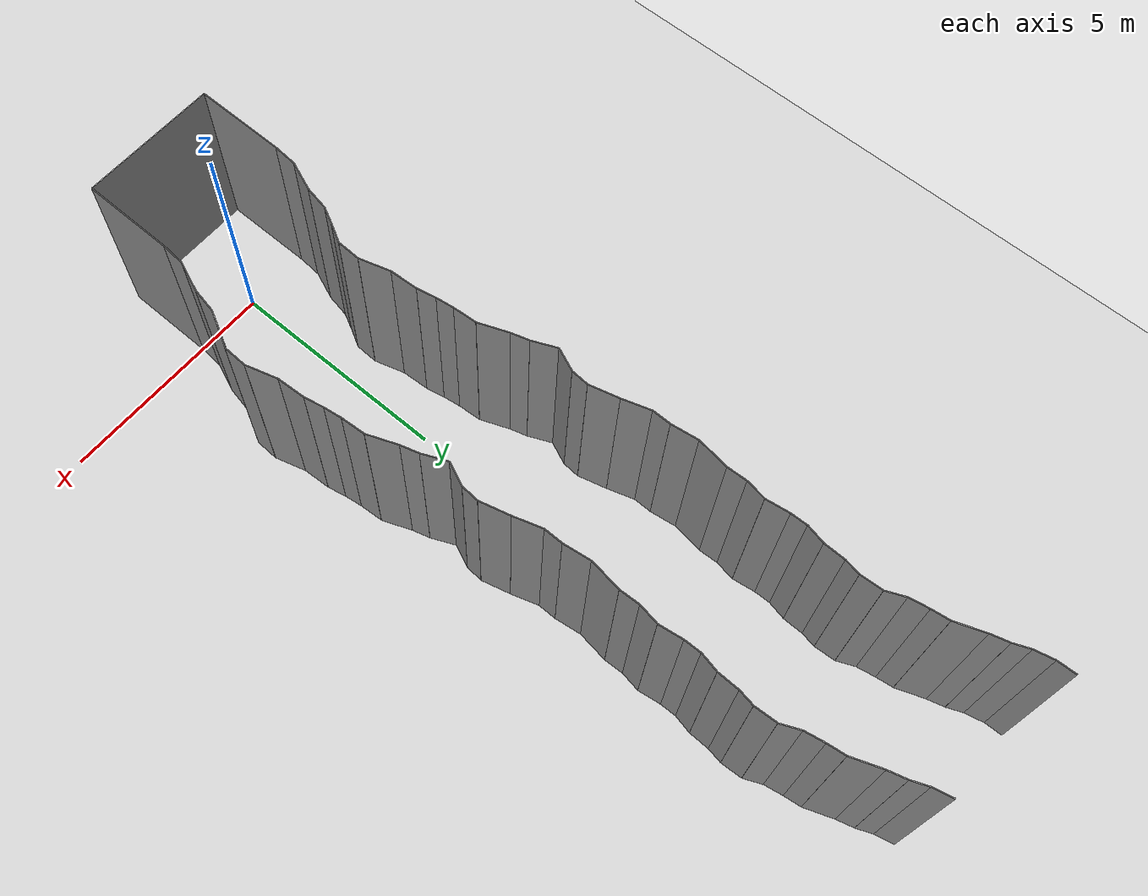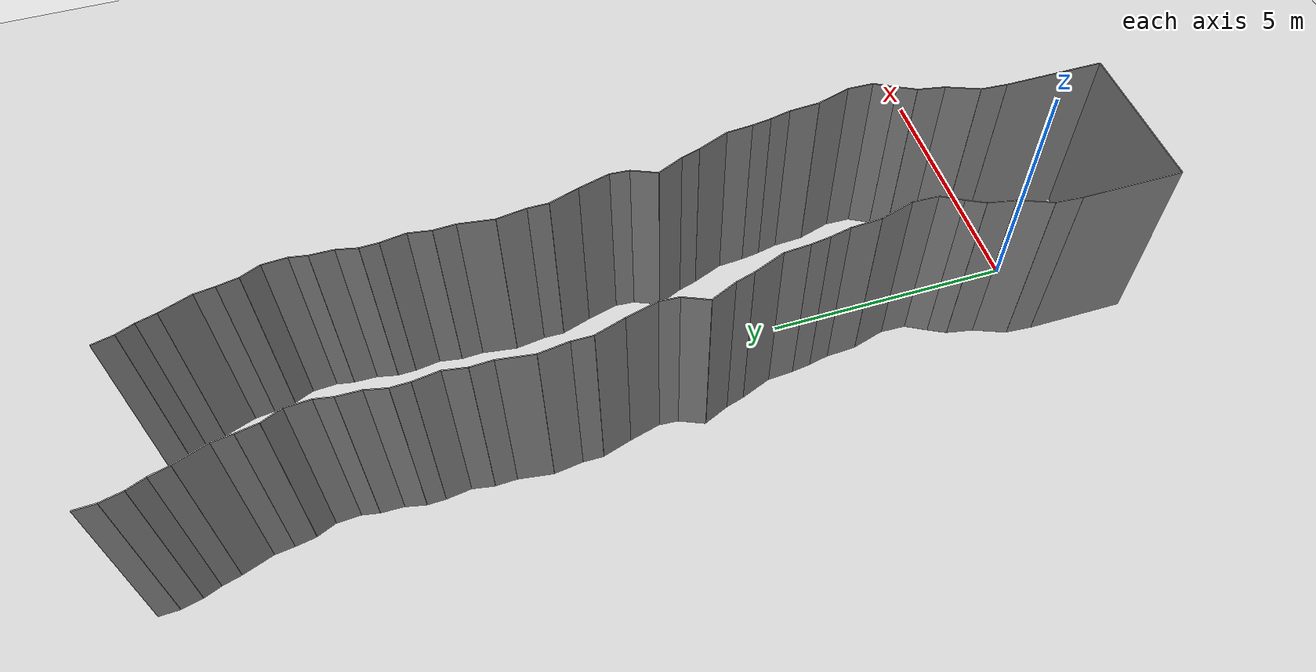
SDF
<sdf version="1.6">
 <world name="default">
  <model name="ground_plane">
   <static>1</static>
   <link name="link">
    <collision name="collision">
     <geometry><plane><normal>0 0 1</normal><size>200 200</size></plane></geometry>
     <surface><friction><ode><mu>100</mu><mu2>50</mu2></ode></friction></surface>
    </collision>
    <visual name="visual">
     <cast_shadows>0</cast_shadows>
     <geometry><plane><normal>0 0 1</normal><size>200 200</size></plane></geometry>
     <material>
      <script><uri>file://media/materials/scripts/gazebo.material</uri><name>Gazebo/Grey</name></script>
     </material>
    </visual>
   </link>
   <pose>0 100 0 0 -0 0</pose>
  </model>
  <model name="wall_back">
   <static>1</static>
   <pose>0.0 -2 2 0.0 0 0.0</pose>
   <link name="link">
    <collision name="collision"><geometry><box><size>3 0.02 4</size></box></geometry></collision>
    <visual name="visual">
     <material>
      <script><name>Gazebo/Grey</name><uri>file://media/materials/scripts/gazebo.material</uri></script>
     </material>
     <geometry><box><size>3 0.02 4</size></box></geometry>
    </visual>
   </link>
  </model>
  <model name="wall_left">
   <static>1</static>
   <pose>1.5 -1 2 0 0 0.00</pose>
   <link name="link">
    <collision name="collision"><geometry><box><size>0.02 2 4</size></box></geometry></collision>
    <visual name="visual">
     <material>
      <script><name>Gazebo/Grey</name><uri>file://media/materials/scripts/gazebo.material</uri></script>
     </material>
     <geometry><box><size>0.02 2 4</size></box></geometry>
    </visual>
   </link>
  </model>
  <model name="wall_right">
   <static>1</static>
   <pose>-1.5 -1 2 0 0 0.00</pose>
   <link name="link">
    <collision name="collision"><geometry><box><size>0.02 2 4</size></box></geometry></collision>
    <visual name="visual">
     <material>
      <script><name>Gazebo/Grey</name><uri>file://media/materials/scripts/gazebo.material</uri></script>
     </material>
     <geometry><box><size>0.02 2 4</size></box></geometry>
    </visual>
   </link>
  </model>
  <model name="wall_0">
   <static>1</static>
   <pose>-1.4806505816911582 0.2638760078779775 2 0 0 -0.07319668671021085</pose>
   <link name="link">
    <collision name="collision"><geometry><box><size>0.02 0.52916896176 4</size></box></geometry></collision>
    <visual name="visual">
     <material>
      <script><name>Gazebo/Grey</name><uri>file://media/materials/scripts/gazebo.material</uri></script>
     </material>
     <geometry><box><size>0.02 0.52916896176 4</size></box></geometry>
    </visual>
   </link>
  </model>
  <model name="wall_1">
   <static>1</static>
   <pose>1.5193494183088418 0.2638760078779775 2 0 0 -0.07319668671021085</pose>
   <link name="link">
    <collision name="collision"><geometry><box><size>0.02 0.52916896176 4</size></box></geometry></collision>
    <visual name="visual">
     <material>
      <script><name>Gazebo/Grey</name><uri>file://media/materials/scripts/gazebo.material</uri></script>
     </material>
     <geometry><box><size>0.02 0.52916896176 4</size></box></geometry>
    </visual>
   </link>
  </model>
  <model name="wall_2">
   <static>1</static>
   <pose>-1.3347677560443025 0.8451626978386627 2 0 0 -0.3793356239943414</pose>
   <link name="link">
    <collision name="collision"><geometry><box><size>0.02 0.683403963327 4</size></box></geometry></collision>
    <visual name="visual">
     <material>
      <script><name>Gazebo/Grey</name><uri>file://media/materials/scripts/gazebo.material</uri></script>
     </material>
     <geometry><box><size>0.02 0.683403963327 4</size></box></geometry>
    </visual>
   </link>
  </model>
  <model name="wall_3">
   <static>1</static>
   <pose>1.6652322439556975 0.8451626978386627 2 0 0 -0.3793356239943414</pose>
   <link name="link">
    <collision name="collision"><geometry><box><size>0.02 0.683403963327 4</size></box></geometry></collision>
    <visual name="visual">
     <material>
      <script><name>Gazebo/Grey</name><uri>file://media/materials/scripts/gazebo.material</uri></script>
     </material>
     <geometry><box><size>0.02 0.683403963327 4</size></box></geometry>
    </visual>
   </link>
  </model>
  <model name="wall_4">
   <static>1</static>
   <pose>-1.1574966765008337 1.427560702445053 2 0 0 -0.18918234575141468</pose>
   <link name="link">
    <collision name="collision"><geometry><box><size>0.02 0.539602047732 4</size></box></geometry></collision>
    <visual name="visual">
     <material>
      <script><name>Gazebo/Grey</name><uri>file://media/materials/scripts/gazebo.material</uri></script>
     </material>
     <geometry><box><size>0.02 0.539602047732 4</size></box></geometry>
    </visual>
   </link>
  </model>
  <model name="wall_5">
   <static>1</static>
   <pose>1.8425033234991663 1.427560702445053 2 0 0 -0.18918234575141468</pose>
   <link name="link">
    <collision name="collision"><geometry><box><size>0.02 0.539602047732 4</size></box></geometry></collision>
    <visual name="visual">
     <material>
      <script><name>Gazebo/Grey</name><uri>file://media/materials/scripts/gazebo.material</uri></script>
     </material>
     <geometry><box><size>0.02 0.539602047732 4</size></box></geometry>
    </visual>
   </link>
  </model>
  <model name="wall_6">
   <static>1</static>
   <pose>-1.018175248905752 1.8668594782574415 2 0 0 -0.47018002745150633</pose>
   <link name="link">
    <collision name="collision"><geometry><box><size>0.02 0.391057870227 4</size></box></geometry></collision>
    <visual name="visual">
     <material>
      <script><name>Gazebo/Grey</name><uri>file://media/materials/scripts/gazebo.material</uri></script>
     </material>
     <geometry><box><size>0.02 0.391057870227 4</size></box></geometry>
    </visual>
   </link>
  </model>
  <model name="wall_7">
   <static>1</static>
   <pose>1.981824751094248 1.8668594782574415 2 0 0 -0.47018002745150633</pose>
   <link name="link">
    <collision name="collision"><geometry><box><size>0.02 0.391057870227 4</size></box></geometry></collision>
    <visual name="visual">
     <material>
      <script><name>Gazebo/Grey</name><uri>file://media/materials/scripts/gazebo.material</uri></script>
     </material>
     <geometry><box><size>0.02 0.391057870227 4</size></box></geometry>
    </visual>
   </link>
  </model>
  <model name="wall_8">
   <static>1</static>
   <pose>-0.8187151531529959 2.243682264581633 2 0 0 -0.5009270629662687</pose>
   <link name="link">
    <collision name="collision"><geometry><box><size>0.02 0.461754925735 4</size></box></geometry></collision>
    <visual name="visual">
     <material>
      <script><name>Gazebo/Grey</name><uri>file://media/materials/scripts/gazebo.material</uri></script>
     </material>
     <geometry><box><size>0.02 0.461754925735 4</size></box></geometry>
    </visual>
   </link>
  </model>
  <model name="wall_9">
   <static>1</static>
   <pose>2.181284846847004 2.243682264581633 2 0 0 -0.5009270629662687</pose>
   <link name="link">
    <collision name="collision"><geometry><box><size>0.02 0.461754925735 4</size></box></geometry></collision>
    <visual name="visual">
     <material>
      <script><name>Gazebo/Grey</name><uri>file://media/materials/scripts/gazebo.material</uri></script>
     </material>
     <geometry><box><size>0.02 0.461754925735 4</size></box></geometry>
    </visual>
   </link>
  </model>
  <model name="wall_10">
   <static>1</static>
   <pose>-0.699499163627389 2.701210871615846 2 0 0 -0.03269064099146519</pose>
   <link name="link">
    <collision name="collision"><geometry><box><size>0.02 0.510307200756 4</size></box></geometry></collision>
    <visual name="visual">
     <material>
      <script><name>Gazebo/Grey</name><uri>file://media/materials/scripts/gazebo.material</uri></script>
     </material>
     <geometry><box><size>0.02 0.510307200756 4</size></box></geometry>
    </visual>
   </link>
  </model>
  <model name="wall_11">
   <static>1</static>
   <pose>2.300500836372611 2.701210871615846 2 0 0 -0.03269064099146519</pose>
   <link name="link">
    <collision name="collision"><geometry><box><size>0.02 0.510307200756 4</size></box></geometry></collision>
    <visual name="visual">
     <material>
      <script><name>Gazebo/Grey</name><uri>file://media/materials/scripts/gazebo.material</uri></script>
     </material>
     <geometry><box><size>0.02 0.510307200756 4</size></box></geometry>
    </visual>
   </link>
  </model>
  <model name="wall_12">
   <static>1</static>
   <pose>-0.7886705382312041 3.288972228835625 2 0 0 0.28506953916078176</pose>
   <link name="link">
    <collision name="collision"><geometry><box><size>0.02 0.693475377139 4</size></box></geometry></collision>
    <visual name="visual">
     <material>
      <script><name>Gazebo/Grey</name><uri>file://media/materials/scripts/gazebo.material</uri></script>
     </material>
     <geometry><box><size>0.02 0.693475377139 4</size></box></geometry>
    </visual>
   </link>
  </model>
  <model name="wall_13">
   <static>1</static>
   <pose>2.2113294617687957 3.288972228835625 2 0 0 0.28506953916078176</pose>
   <link name="link">
    <collision name="collision"><geometry><box><size>0.02 0.693475377139 4</size></box></geometry></collision>
    <visual name="visual">
     <material>
      <script><name>Gazebo/Grey</name><uri>file://media/materials/scripts/gazebo.material</uri></script>
     </material>
     <geometry><box><size>0.02 0.693475377139 4</size></box></geometry>
    </visual>
   </link>
  </model>
  <model name="wall_14">
   <static>1</static>
   <pose>-0.9032436255926277 3.926684897969823 2 0 0 0.05588869139170713</pose>
   <link name="link">
    <collision name="collision"><geometry><box><size>0.02 0.610890996522 4</size></box></geometry></collision>
    <visual name="visual">
     <material>
      <script><name>Gazebo/Grey</name><uri>file://media/materials/scripts/gazebo.material</uri></script>
     </material>
     <geometry><box><size>0.02 0.610890996522 4</size></box></geometry>
    </visual>
   </link>
  </model>
  <model name="wall_15">
   <static>1</static>
   <pose>2.0967563744073723 3.926684897969823 2 0 0 0.05588869139170713</pose>
   <link name="link">
    <collision name="collision"><geometry><box><size>0.02 0.610890996522 4</size></box></geometry></collision>
    <visual name="visual">
     <material>
      <script><name>Gazebo/Grey</name><uri>file://media/materials/scripts/gazebo.material</uri></script>
     </material>
     <geometry><box><size>0.02 0.610890996522 4</size></box></geometry>
    </visual>
   </link>
  </model>
  <model name="wall_16">
   <static>1</static>
   <pose>-0.9632969751219683 4.437540530153037 2 0 0 0.20585223921532592</pose>
   <link name="link">
    <collision name="collision"><geometry><box><size>0.02 0.420655329162 4</size></box></geometry></collision>
    <visual name="visual">
     <material>
      <script><name>Gazebo/Grey</name><uri>file://media/materials/scripts/gazebo.material</uri></script>
     </material>
     <geometry><box><size>0.02 0.420655329162 4</size></box></geometry>
    </visual>
   </link>
  </model>
  <model name="wall_17">
   <static>1</static>
   <pose>2.036703024878032 4.437540530153037 2 0 0 0.20585223921532592</pose>
   <link name="link">
    <collision name="collision"><geometry><box><size>0.02 0.420655329162 4</size></box></geometry></collision>
    <visual name="visual">
     <material>
      <script><name>Gazebo/Grey</name><uri>file://media/materials/scripts/gazebo.material</uri></script>
     </material>
     <geometry><box><size>0.02 0.420655329162 4</size></box></geometry>
    </visual>
   </link>
  </model>
  <model name="wall_18">
   <static>1</static>
   <pose>-1.0332514346551713 4.836432062273257 2 0 0 0.13880396763324238</pose>
   <link name="link">
    <collision name="collision"><geometry><box><size>0.02 0.389757587681 4</size></box></geometry></collision>
    <visual name="visual">
     <material>
      <script><name>Gazebo/Grey</name><uri>file://media/materials/scripts/gazebo.material</uri></script>
     </material>
     <geometry><box><size>0.02 0.389757587681 4</size></box></geometry>
    </visual>
   </link>
  </model>
  <model name="wall_19">
   <static>1</static>
   <pose>1.9667485653448287 4.836432062273257 2 0 0 0.13880396763324238</pose>
   <link name="link">
    <collision name="collision"><geometry><box><size>0.02 0.389757587681 4</size></box></geometry></collision>
    <visual name="visual">
     <material>
      <script><name>Gazebo/Grey</name><uri>file://media/materials/scripts/gazebo.material</uri></script>
     </material>
     <geometry><box><size>0.02 0.389757587681 4</size></box></geometry>
    </visual>
   </link>
  </model>
  <model name="wall_20">
   <static>1</static>
   <pose>-1.0778982370499175 5.289179252299811 2 0 0 0.0679764345224434</pose>
   <link name="link">
    <collision name="collision"><geometry><box><size>0.02 0.520687941478 4</size></box></geometry></collision>
    <visual name="visual">
     <material>
      <script><name>Gazebo/Grey</name><uri>file://media/materials/scripts/gazebo.material</uri></script>
     </material>
     <geometry><box><size>0.02 0.520687941478 4</size></box></geometry>
    </visual>
   </link>
  </model>
  <model name="wall_21">
   <static>1</static>
   <pose>1.9221017629500825 5.289179252299811 2 0 0 0.0679764345224434</pose>
   <link name="link">
    <collision name="collision"><geometry><box><size>0.02 0.520687941478 4</size></box></geometry></collision>
    <visual name="visual">
     <material>
      <script><name>Gazebo/Grey</name><uri>file://media/materials/scripts/gazebo.material</uri></script>
     </material>
     <geometry><box><size>0.02 0.520687941478 4</size></box></geometry>
    </visual>
   </link>
  </model>
  <model name="wall_22">
   <static>1</static>
   <pose>-1.2184899678075378 5.859696038116188 2 0 0 0.37661257804343046</pose>
   <link name="link">
    <collision name="collision"><geometry><box><size>0.02 0.668391895065 4</size></box></geometry></collision>
    <visual name="visual">
     <material>
      <script><name>Gazebo/Grey</name><uri>file://media/materials/scripts/gazebo.material</uri></script>
     </material>
     <geometry><box><size>0.02 0.668391895065 4</size></box></geometry>
    </visual>
   </link>
  </model>
  <model name="wall_23">
   <static>1</static>
   <pose>1.7815100321924622 5.859696038116188 2 0 0 0.37661257804343046</pose>
   <link name="link">
    <collision name="collision"><geometry><box><size>0.02 0.668391895065 4</size></box></geometry></collision>
    <visual name="visual">
     <material>
      <script><name>Gazebo/Grey</name><uri>file://media/materials/scripts/gazebo.material</uri></script>
     </material>
     <geometry><box><size>0.02 0.668391895065 4</size></box></geometry>
    </visual>
   </link>
  </model>
  <model name="wall_24">
   <static>1</static>
   <pose>-1.3963707065241764 6.357607284663069 2 0 0 0.28571841662320563</pose>
   <link name="link">
    <collision name="collision"><geometry><box><size>0.02 0.390088755445 4</size></box></geometry></collision>
    <visual name="visual">
     <material>
      <script><name>Gazebo/Grey</name><uri>file://media/materials/scripts/gazebo.material</uri></script>
     </material>
     <geometry><box><size>0.02 0.390088755445 4</size></box></geometry>
    </visual>
   </link>
  </model>
  <model name="wall_25">
   <static>1</static>
   <pose>1.6036292934758236 6.357607284663069 2 0 0 0.28571841662320563</pose>
   <link name="link">
    <collision name="collision"><geometry><box><size>0.02 0.390088755445 4</size></box></geometry></collision>
    <visual name="visual">
     <material>
      <script><name>Gazebo/Grey</name><uri>file://media/materials/scripts/gazebo.material</uri></script>
     </material>
     <geometry><box><size>0.02 0.390088755445 4</size></box></geometry>
    </visual>
   </link>
  </model>
  <model name="wall_26">
   <static>1</static>
   <pose>-1.5641696388041426 6.797914586991042 2 0 0 0.41923395385083295</pose>
   <link name="link">
    <collision name="collision"><geometry><box><size>0.02 0.554346070406 4</size></box></geometry></collision>
    <visual name="visual">
     <material>
      <script><name>Gazebo/Grey</name><uri>file://media/materials/scripts/gazebo.material</uri></script>
     </material>
     <geometry><box><size>0.02 0.554346070406 4</size></box></geometry>
    </visual>
   </link>
  </model>
  <model name="wall_27">
   <static>1</static>
   <pose>1.4358303611958574 6.797914586991042 2 0 0 0.41923395385083295</pose>
   <link name="link">
    <collision name="collision"><geometry><box><size>0.02 0.554346070406 4</size></box></geometry></collision>
    <visual name="visual">
     <material>
      <script><name>Gazebo/Grey</name><uri>file://media/materials/scripts/gazebo.material</uri></script>
     </material>
     <geometry><box><size>0.02 0.554346070406 4</size></box></geometry>
    </visual>
   </link>
  </model>
  <model name="wall_28">
   <static>1</static>
   <pose>-1.5715556928346086 7.294797096098278 2 0 0 -0.4083257589642621</pose>
   <link name="link">
    <collision name="collision"><geometry><box><size>0.02 0.531087053653 4</size></box></geometry></collision>
    <visual name="visual">
     <material>
      <script><name>Gazebo/Grey</name><uri>file://media/materials/scripts/gazebo.material</uri></script>
     </material>
     <geometry><box><size>0.02 0.531087053653 4</size></box></geometry>
    </visual>
   </link>
  </model>
  <model name="wall_29">
   <static>1</static>
   <pose>1.4284443071653914 7.294797096098278 2 0 0 -0.4083257589642621</pose>
   <link name="link">
    <collision name="collision"><geometry><box><size>0.02 0.531087053653 4</size></box></geometry></collision>
    <visual name="visual">
     <material>
      <script><name>Gazebo/Grey</name><uri>file://media/materials/scripts/gazebo.material</uri></script>
     </material>
     <geometry><box><size>0.02 0.531087053653 4</size></box></geometry>
    </visual>
   </link>
  </model>
  <model name="wall_30">
   <static>1</static>
   <pose>-1.4531127868125584 7.728849146482762 2 0 0 -0.06820697990331713</pose>
   <link name="link">
    <collision name="collision"><geometry><box><size>0.02 0.38156657386 4</size></box></geometry></collision>
    <visual name="visual">
     <material>
      <script><name>Gazebo/Grey</name><uri>file://media/materials/scripts/gazebo.material</uri></script>
     </material>
     <geometry><box><size>0.02 0.38156657386 4</size></box></geometry>
    </visual>
   </link>
  </model>
  <model name="wall_31">
   <static>1</static>
   <pose>1.5468872131874416 7.728849146482762 2 0 0 -0.06820697990331713</pose>
   <link name="link">
    <collision name="collision"><geometry><box><size>0.02 0.38156657386 4</size></box></geometry></collision>
    <visual name="visual">
     <material>
      <script><name>Gazebo/Grey</name><uri>file://media/materials/scripts/gazebo.material</uri></script>
     </material>
     <geometry><box><size>0.02 0.38156657386 4</size></box></geometry>
    </visual>
   </link>
  </model>
  <model name="wall_32">
   <static>1</static>
   <pose>-1.5222561957525884 8.230989704984943 2 0 0 0.25760327481442136</pose>
   <link name="link">
    <collision name="collision"><geometry><box><size>0.02 0.644880658828 4</size></box></geometry></collision>
    <visual name="visual">
     <material>
      <script><name>Gazebo/Grey</name><uri>file://media/materials/scripts/gazebo.material</uri></script>
     </material>
     <geometry><box><size>0.02 0.644880658828 4</size></box></geometry>
    </visual>
   </link>
  </model>
  <model name="wall_33">
   <static>1</static>
   <pose>1.4777438042474116 8.230989704984943 2 0 0 0.25760327481442136</pose>
   <link name="link">
    <collision name="collision"><geometry><box><size>0.02 0.644880658828 4</size></box></geometry></collision>
    <visual name="visual">
     <material>
      <script><name>Gazebo/Grey</name><uri>file://media/materials/scripts/gazebo.material</uri></script>
     </material>
     <geometry><box><size>0.02 0.644880658828 4</size></box></geometry>
    </visual>
   </link>
  </model>
  <model name="wall_34">
   <static>1</static>
   <pose>-1.6977240495216837 8.836065523477549 2 0 0 0.3080745388373704</pose>
   <link name="link">
    <collision name="collision"><geometry><box><size>0.02 0.615529509744 4</size></box></geometry></collision>
    <visual name="visual">
     <material>
      <script><name>Gazebo/Grey</name><uri>file://media/materials/scripts/gazebo.material</uri></script>
     </material>
     <geometry><box><size>0.02 0.615529509744 4</size></box></geometry>
    </visual>
   </link>
  </model>
  <model name="wall_35">
   <static>1</static>
   <pose>1.3022759504783163 8.836065523477549 2 0 0 0.3080745388373704</pose>
   <link name="link">
    <collision name="collision"><geometry><box><size>0.02 0.615529509744 4</size></box></geometry></collision>
    <visual name="visual">
     <material>
      <script><name>Gazebo/Grey</name><uri>file://media/materials/scripts/gazebo.material</uri></script>
     </material>
     <geometry><box><size>0.02 0.615529509744 4</size></box></geometry>
    </visual>
   </link>
  </model>
  <model name="wall_36">
   <static>1</static>
   <pose>-1.7900697899834113 9.332865241432385 2 0 0 -0.004795643857899882</pose>
   <link name="link">
    <collision name="collision"><geometry><box><size>0.02 0.407054239281 4</size></box></geometry></collision>
    <visual name="visual">
     <material>
      <script><name>Gazebo/Grey</name><uri>file://media/materials/scripts/gazebo.material</uri></script>
     </material>
     <geometry><box><size>0.02 0.407054239281 4</size></box></geometry>
    </visual>
   </link>
  </model>
  <model name="wall_37">
   <static>1</static>
   <pose>1.2099302100165887 9.332865241432385 2 0 0 -0.004795643857899882</pose>
   <link name="link">
    <collision name="collision"><geometry><box><size>0.02 0.407054239281 4</size></box></geometry></collision>
    <visual name="visual">
     <material>
      <script><name>Gazebo/Grey</name><uri>file://media/materials/scripts/gazebo.material</uri></script>
     </material>
     <geometry><box><size>0.02 0.407054239281 4</size></box></geometry>
    </visual>
   </link>
  </model>
  <model name="wall_38">
   <static>1</static>
   <pose>-1.8290855316536374 9.826789955649428 2 0 0 0.1368519854148838</pose>
   <link name="link">
    <collision name="collision"><geometry><box><size>0.02 0.5862813823 4</size></box></geometry></collision>
    <visual name="visual">
     <material>
      <script><name>Gazebo/Grey</name><uri>file://media/materials/scripts/gazebo.material</uri></script>
     </material>
     <geometry><box><size>0.02 0.5862813823 4</size></box></geometry>
    </visual>
   </link>
  </model>
  <model name="wall_39">
   <static>1</static>
   <pose>1.1709144683463626 9.826789955649428 2 0 0 0.1368519854148838</pose>
   <link name="link">
    <collision name="collision"><geometry><box><size>0.02 0.5862813823 4</size></box></geometry></collision>
    <visual name="visual">
     <material>
      <script><name>Gazebo/Grey</name><uri>file://media/materials/scripts/gazebo.material</uri></script>
     </material>
     <geometry><box><size>0.02 0.5862813823 4</size></box></geometry>
    </visual>
   </link>
  </model>
  <model name="wall_40">
   <static>1</static>
   <pose>-1.8211837255270784 10.460243788075154 2 0 0 -0.13871294060656478</pose>
   <link name="link">
    <collision name="collision"><geometry><box><size>0.02 0.692761928253 4</size></box></geometry></collision>
    <visual name="visual">
     <material>
      <script><name>Gazebo/Grey</name><uri>file://media/materials/scripts/gazebo.material</uri></script>
     </material>
     <geometry><box><size>0.02 0.692761928253 4</size></box></geometry>
    </visual>
   </link>
  </model>
  <model name="wall_41">
   <static>1</static>
   <pose>1.1788162744729216 10.460243788075154 2 0 0 -0.13871294060656478</pose>
   <link name="link">
    <collision name="collision"><geometry><box><size>0.02 0.692761928253 4</size></box></geometry></collision>
    <visual name="visual">
     <material>
      <script><name>Gazebo/Grey</name><uri>file://media/materials/scripts/gazebo.material</uri></script>
     </material>
     <geometry><box><size>0.02 0.692761928253 4</size></box></geometry>
    </visual>
   </link>
  </model>
  <model name="wall_42">
   <static>1</static>
   <pose>-1.7820610402955435 11.017080949439686 2 0 0 0.04100408089633034</pose>
   <link name="link">
    <collision name="collision"><geometry><box><size>0.02 0.42792622097 4</size></box></geometry></collision>
    <visual name="visual">
     <material>
      <script><name>Gazebo/Grey</name><uri>file://media/materials/scripts/gazebo.material</uri></script>
     </material>
     <geometry><box><size>0.02 0.42792622097 4</size></box></geometry>
    </visual>
   </link>
  </model>
  <model name="wall_43">
   <static>1</static>
   <pose>1.2179389597044565 11.017080949439686 2 0 0 0.04100408089633034</pose>
   <link name="link">
    <collision name="collision"><geometry><box><size>0.02 0.42792622097 4</size></box></geometry></collision>
    <visual name="visual">
     <material>
      <script><name>Gazebo/Grey</name><uri>file://media/materials/scripts/gazebo.material</uri></script>
     </material>
     <geometry><box><size>0.02 0.42792622097 4</size></box></geometry>
    </visual>
   </link>
  </model>
  <model name="wall_44">
   <static>1</static>
   <pose>-1.7545526363760067 11.448993846082535 2 0 0 -0.16481129784456724</pose>
   <link name="link">
    <collision name="collision"><geometry><box><size>0.02 0.44225207632 4</size></box></geometry></collision>
    <visual name="visual">
     <material>
      <script><name>Gazebo/Grey</name><uri>file://media/materials/scripts/gazebo.material</uri></script>
     </material>
     <geometry><box><size>0.02 0.44225207632 4</size></box></geometry>
    </visual>
   </link>
  </model>
  <model name="wall_45">
   <static>1</static>
   <pose>1.2454473636239933 11.448993846082535 2 0 0 -0.16481129784456724</pose>
   <link name="link">
    <collision name="collision"><geometry><box><size>0.02 0.44225207632 4</size></box></geometry></collision>
    <visual name="visual">
     <material>
      <script><name>Gazebo/Grey</name><uri>file://media/materials/scripts/gazebo.material</uri></script>
     </material>
     <geometry><box><size>0.02 0.44225207632 4</size></box></geometry>
    </visual>
   </link>
  </model>
  <model name="wall_46">
   <static>1</static>
   <pose>-1.7539616690065436 11.916115314415272 2 0 0 0.14236175861577385</pose>
   <link name="link">
    <collision name="collision"><geometry><box><size>0.02 0.503072924029 4</size></box></geometry></collision>
    <visual name="visual">
     <material>
      <script><name>Gazebo/Grey</name><uri>file://media/materials/scripts/gazebo.material</uri></script>
     </material>
     <geometry><box><size>0.02 0.503072924029 4</size></box></geometry>
    </visual>
   </link>
  </model>
  <model name="wall_47">
   <static>1</static>
   <pose>1.2460383309934564 11.916115314415272 2 0 0 0.14236175861577385</pose>
   <link name="link">
    <collision name="collision"><geometry><box><size>0.02 0.503072924029 4</size></box></geometry></collision>
    <visual name="visual">
     <material>
      <script><name>Gazebo/Grey</name><uri>file://media/materials/scripts/gazebo.material</uri></script>
     </material>
     <geometry><box><size>0.02 0.503072924029 4</size></box></geometry>
    </visual>
   </link>
  </model>
  <model name="wall_48">
   <static>1</static>
   <pose>-1.7937694805933937 12.343922469897969 2 0 0 0.0230335079206646</pose>
   <link name="link">
    <collision name="collision"><geometry><box><size>0.02 0.357725529907 4</size></box></geometry></collision>
    <visual name="visual">
     <material>
      <script><name>Gazebo/Grey</name><uri>file://media/materials/scripts/gazebo.material</uri></script>
     </material>
     <geometry><box><size>0.02 0.357725529907 4</size></box></geometry>
    </visual>
   </link>
  </model>
  <model name="wall_49">
   <static>1</static>
   <pose>1.2062305194066063 12.343922469897969 2 0 0 0.0230335079206646</pose>
   <link name="link">
    <collision name="collision"><geometry><box><size>0.02 0.357725529907 4</size></box></geometry></collision>
    <visual name="visual">
     <material>
      <script><name>Gazebo/Grey</name><uri>file://media/materials/scripts/gazebo.material</uri></script>
     </material>
     <geometry><box><size>0.02 0.357725529907 4</size></box></geometry>
    </visual>
   </link>
  </model>
  <model name="wall_50">
   <static>1</static>
   <pose>-1.7545245136025849 12.723348766916374 2 0 0 -0.2128864093295695</pose>
   <link name="link">
    <collision name="collision"><geometry><box><size>0.02 0.410488678348 4</size></box></geometry></collision>
    <visual name="visual">
     <material>
      <script><name>Gazebo/Grey</name><uri>file://media/materials/scripts/gazebo.material</uri></script>
     </material>
     <geometry><box><size>0.02 0.410488678348 4</size></box></geometry>
    </visual>
   </link>
  </model>
  <model name="wall_51">
   <static>1</static>
   <pose>1.2454754863974151 12.723348766916374 2 0 0 -0.2128864093295695</pose>
   <link name="link">
    <collision name="collision"><geometry><box><size>0.02 0.410488678348 4</size></box></geometry></collision>
    <visual name="visual">
     <material>
      <script><name>Gazebo/Grey</name><uri>file://media/materials/scripts/gazebo.material</uri></script>
     </material>
     <geometry><box><size>0.02 0.410488678348 4</size></box></geometry>
    </visual>
   </link>
  </model>
  <model name="wall_52">
   <static>1</static>
   <pose>-1.707073501311995 13.151512796722969 2 0 0 -0.01795683852493344</pose>
   <link name="link">
    <collision name="collision"><geometry><box><size>0.02 0.45517948928 4</size></box></geometry></collision>
    <visual name="visual">
     <material>
      <script><name>Gazebo/Grey</name><uri>file://media/materials/scripts/gazebo.material</uri></script>
     </material>
     <geometry><box><size>0.02 0.45517948928 4</size></box></geometry>
    </visual>
   </link>
  </model>
  <model name="wall_53">
   <static>1</static>
   <pose>1.292926498688005 13.151512796722969 2 0 0 -0.01795683852493344</pose>
   <link name="link">
    <collision name="collision"><geometry><box><size>0.02 0.45517948928 4</size></box></geometry></collision>
    <visual name="visual">
     <material>
      <script><name>Gazebo/Grey</name><uri>file://media/materials/scripts/gazebo.material</uri></script>
     </material>
     <geometry><box><size>0.02 0.45517948928 4</size></box></geometry>
    </visual>
   </link>
  </model>
  <model name="wall_54">
   <static>1</static>
   <pose>-1.6729093456068864 13.547182709813656 2 0 0 -0.17703576717036326</pose>
   <link name="link">
    <collision name="collision"><geometry><box><size>0.02 0.341572479874 4</size></box></geometry></collision>
    <visual name="visual">
     <material>
      <script><name>Gazebo/Grey</name><uri>file://media/materials/scripts/gazebo.material</uri></script>
     </material>
     <geometry><box><size>0.02 0.341572479874 4</size></box></geometry>
    </visual>
   </link>
  </model>
  <model name="wall_55">
   <static>1</static>
   <pose>1.3270906543931136 13.547182709813656 2 0 0 -0.17703576717036326</pose>
   <link name="link">
    <collision name="collision"><geometry><box><size>0.02 0.341572479874 4</size></box></geometry></collision>
    <visual name="visual">
     <material>
      <script><name>Gazebo/Grey</name><uri>file://media/materials/scripts/gazebo.material</uri></script>
     </material>
     <geometry><box><size>0.02 0.341572479874 4</size></box></geometry>
    </visual>
   </link>
  </model>
  <model name="wall_56">
   <static>1</static>
   <pose>-1.6562424079520828 13.950159059017647 2 0 0 0.057038780066605795</pose>
   <link name="link">
    <collision name="collision"><geometry><box><size>0.02 0.470484111915 4</size></box></geometry></collision>
    <visual name="visual">
     <material>
      <script><name>Gazebo/Grey</name><uri>file://media/materials/scripts/gazebo.material</uri></script>
     </material>
     <geometry><box><size>0.02 0.470484111915 4</size></box></geometry>
    </visual>
   </link>
  </model>
  <model name="wall_57">
   <static>1</static>
   <pose>1.3437575920479172 13.950159059017647 2 0 0 0.057038780066605795</pose>
   <link name="link">
    <collision name="collision"><geometry><box><size>0.02 0.470484111915 4</size></box></geometry></collision>
    <visual name="visual">
     <material>
      <script><name>Gazebo/Grey</name><uri>file://media/materials/scripts/gazebo.material</uri></script>
     </material>
     <geometry><box><size>0.02 0.470484111915 4</size></box></geometry>
    </visual>
   </link>
  </model>
  <model name="wall_58">
   <static>1</static>
   <pose>-1.7538399868780927 14.373468656080588 2 0 0 0.4201339943812786</pose>
   <link name="link">
    <collision name="collision"><geometry><box><size>0.02 0.412799627336 4</size></box></geometry></collision>
    <visual name="visual">
     <material>
      <script><name>Gazebo/Grey</name><uri>file://media/materials/scripts/gazebo.material</uri></script>
     </material>
     <geometry><box><size>0.02 0.412799627336 4</size></box></geometry>
    </visual>
   </link>
  </model>
  <model name="wall_59">
   <static>1</static>
   <pose>1.2461600131219073 14.373468656080588 2 0 0 0.4201339943812786</pose>
   <link name="link">
    <collision name="collision"><geometry><box><size>0.02 0.412799627336 4</size></box></geometry></collision>
    <visual name="visual">
     <material>
      <script><name>Gazebo/Grey</name><uri>file://media/materials/scripts/gazebo.material</uri></script>
     </material>
     <geometry><box><size>0.02 0.412799627336 4</size></box></geometry>
    </visual>
   </link>
  </model>
  <model name="wall_60">
   <static>1</static>
   <pose>-1.8757019489359947 14.763976343141834 2 0 0 0.18434007996588148</pose>
   <link name="link">
    <collision name="collision"><geometry><box><size>0.02 0.411079909143 4</size></box></geometry></collision>
    <visual name="visual">
     <material>
      <script><name>Gazebo/Grey</name><uri>file://media/materials/scripts/gazebo.material</uri></script>
     </material>
     <geometry><box><size>0.02 0.411079909143 4</size></box></geometry>
    </visual>
   </link>
  </model>
  <model name="wall_61">
   <static>1</static>
   <pose>1.1242980510640053 14.763976343141834 2 0 0 0.18434007996588148</pose>
   <link name="link">
    <collision name="collision"><geometry><box><size>0.02 0.411079909143 4</size></box></geometry></collision>
    <visual name="visual">
     <material>
      <script><name>Gazebo/Grey</name><uri>file://media/materials/scripts/gazebo.material</uri></script>
     </material>
     <geometry><box><size>0.02 0.411079909143 4</size></box></geometry>
    </visual>
   </link>
  </model>
  <model name="wall_62">
   <static>1</static>
   <pose>-1.9380992998486257 15.154620653485713 2 0 0 0.130349282143044</pose>
   <link name="link">
    <collision name="collision"><geometry><box><size>0.02 0.380400570652 4</size></box></geometry></collision>
    <visual name="visual">
     <material>
      <script><name>Gazebo/Grey</name><uri>file://media/materials/scripts/gazebo.material</uri></script>
     </material>
     <geometry><box><size>0.02 0.380400570652 4</size></box></geometry>
    </visual>
   </link>
  </model>
  <model name="wall_63">
   <static>1</static>
   <pose>1.0619007001513743 15.154620653485713 2 0 0 0.130349282143044</pose>
   <link name="link">
    <collision name="collision"><geometry><box><size>0.02 0.380400570652 4</size></box></geometry></collision>
    <visual name="visual">
     <material>
      <script><name>Gazebo/Grey</name><uri>file://media/materials/scripts/gazebo.material</uri></script>
     </material>
     <geometry><box><size>0.02 0.380400570652 4</size></box></geometry>
    </visual>
   </link>
  </model>
  <model name="wall_64">
   <static>1</static>
   <pose>-2.075568128735266 15.643693925728725 2 0 0 0.3589575430471233</pose>
   <link name="link">
    <collision name="collision"><geometry><box><size>0.02 0.64188452503 4</size></box></geometry></collision>
    <visual name="visual">
     <material>
      <script><name>Gazebo/Grey</name><uri>file://media/materials/scripts/gazebo.material</uri></script>
     </material>
     <geometry><box><size>0.02 0.64188452503 4</size></box></geometry>
    </visual>
   </link>
  </model>
  <model name="wall_65">
   <static>1</static>
   <pose>0.9244318712647339 15.643693925728725 2 0 0 0.3589575430471233</pose>
   <link name="link">
    <collision name="collision"><geometry><box><size>0.02 0.64188452503 4</size></box></geometry></collision>
    <visual name="visual">
     <material>
      <script><name>Gazebo/Grey</name><uri>file://media/materials/scripts/gazebo.material</uri></script>
     </material>
     <geometry><box><size>0.02 0.64188452503 4</size></box></geometry>
    </visual>
   </link>
  </model>
  <model name="wall_66">
   <static>1</static>
   <pose>-2.2393345266207048 16.126716548847124 2 0 0 0.2725503608674695</pose>
   <link name="link">
    <collision name="collision"><geometry><box><size>0.02 0.379064378185 4</size></box></geometry></collision>
    <visual name="visual">
     <material>
      <script><name>Gazebo/Grey</name><uri>file://media/materials/scripts/gazebo.material</uri></script>
     </material>
     <geometry><box><size>0.02 0.379064378185 4</size></box></geometry>
    </visual>
   </link>
  </model>
  <model name="wall_67">
   <static>1</static>
   <pose>0.7606654733792952 16.126716548847124 2 0 0 0.2725503608674695</pose>
   <link name="link">
    <collision name="collision"><geometry><box><size>0.02 0.379064378185 4</size></box></geometry></collision>
    <visual name="visual">
     <material>
      <script><name>Gazebo/Grey</name><uri>file://media/materials/scripts/gazebo.material</uri></script>
     </material>
     <geometry><box><size>0.02 0.379064378185 4</size></box></geometry>
    </visual>
   </link>
  </model>
  <model name="wall_68">
   <static>1</static>
   <pose>-2.3595510225879344 16.47393807386008 2 0 0 0.39777621847941735</pose>
   <link name="link">
    <collision name="collision"><geometry><box><size>0.02 0.357264412374 4</size></box></geometry></collision>
    <visual name="visual">
     <material>
      <script><name>Gazebo/Grey</name><uri>file://media/materials/scripts/gazebo.material</uri></script>
     </material>
     <geometry><box><size>0.02 0.357264412374 4</size></box></geometry>
    </visual>
   </link>
  </model>
  <model name="wall_69">
   <static>1</static>
   <pose>0.6404489774120656 16.47393807386008 2 0 0 0.39777621847941735</pose>
   <link name="link">
    <collision name="collision"><geometry><box><size>0.02 0.357264412374 4</size></box></geometry></collision>
    <visual name="visual">
     <material>
      <script><name>Gazebo/Grey</name><uri>file://media/materials/scripts/gazebo.material</uri></script>
     </material>
     <geometry><box><size>0.02 0.357264412374 4</size></box></geometry>
    </visual>
   </link>
  </model>
  <model name="wall_70">
   <static>1</static>
   <pose>-2.475968631768266 16.838943068036187 2 0 0 0.23150211455220218</pose>
   <link name="link">
    <collision name="collision"><geometry><box><size>0.02 0.41161995103 4</size></box></geometry></collision>
    <visual name="visual">
     <material>
      <script><name>Gazebo/Grey</name><uri>file://media/materials/scripts/gazebo.material</uri></script>
     </material>
     <geometry><box><size>0.02 0.41161995103 4</size></box></geometry>
    </visual>
   </link>
  </model>
  <model name="wall_71">
   <static>1</static>
   <pose>0.5240313682317339 16.838943068036187 2 0 0 0.23150211455220218</pose>
   <link name="link">
    <collision name="collision"><geometry><box><size>0.02 0.41161995103 4</size></box></geometry></collision>
    <visual name="visual">
     <material>
      <script><name>Gazebo/Grey</name><uri>file://media/materials/scripts/gazebo.material</uri></script>
     </material>
     <geometry><box><size>0.02 0.41161995103 4</size></box></geometry>
    </visual>
   </link>
  </model>
  <model name="wall_72">
   <static>1</static>
   <pose>-2.529202107953661 17.23527186068816 2 0 0 0.03066481382716857</pose>
   <link name="link">
    <collision name="collision"><geometry><box><size>0.02 0.392202867915 4</size></box></geometry></collision>
    <visual name="visual">
     <material>
      <script><name>Gazebo/Grey</name><uri>file://media/materials/scripts/gazebo.material</uri></script>
     </material>
     <geometry><box><size>0.02 0.392202867915 4</size></box></geometry>
    </visual>
   </link>
  </model>
 </world>
</sdf>
